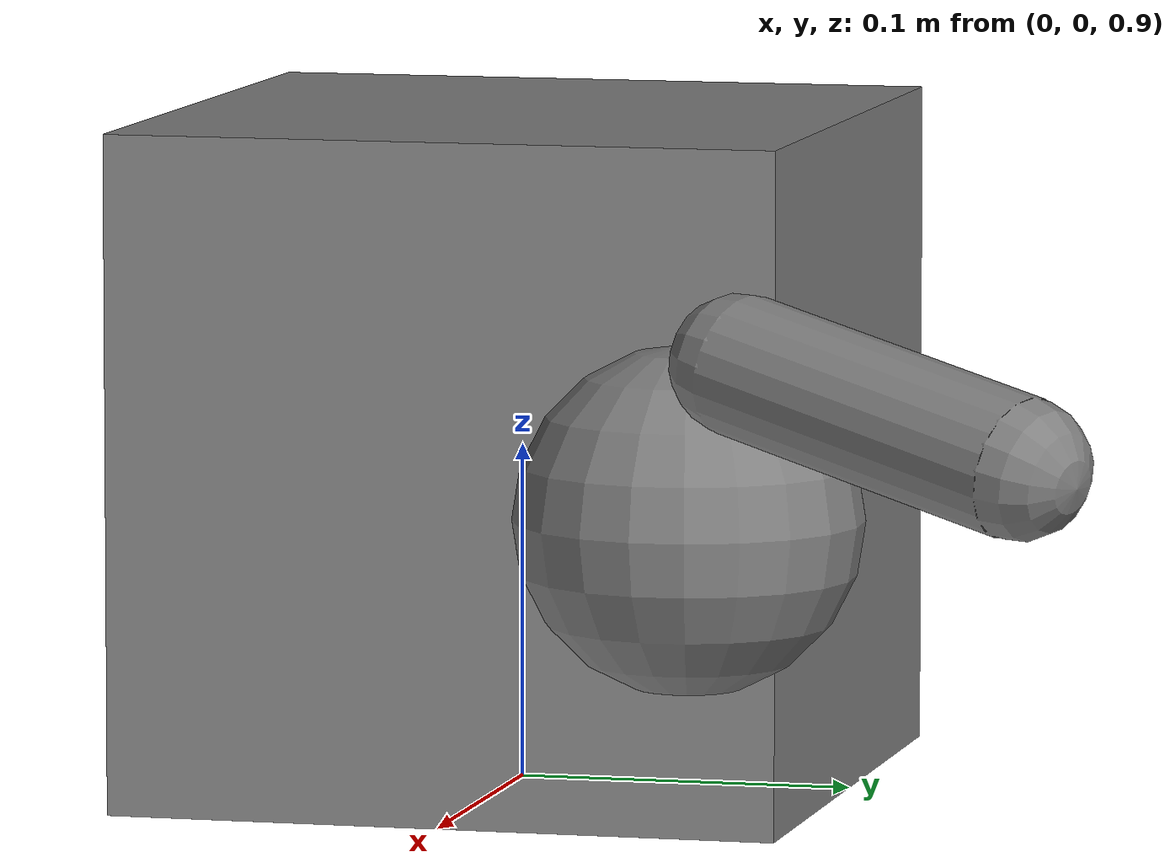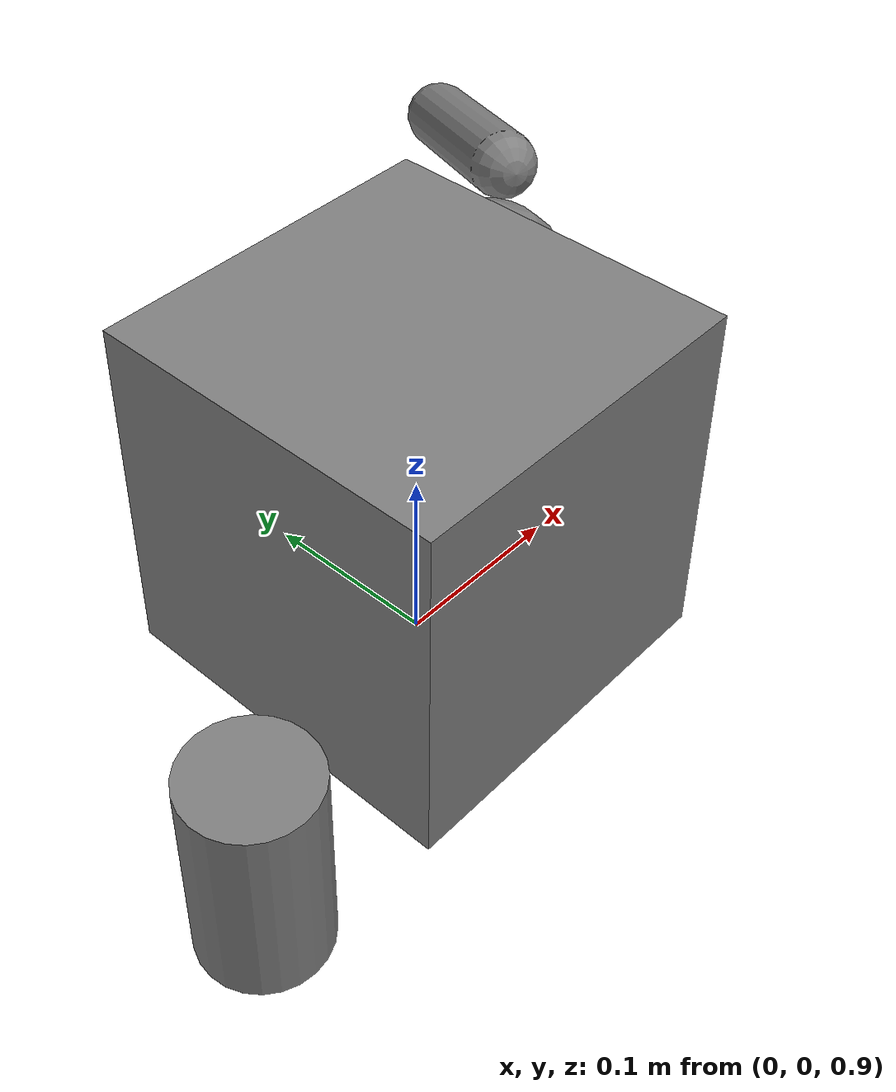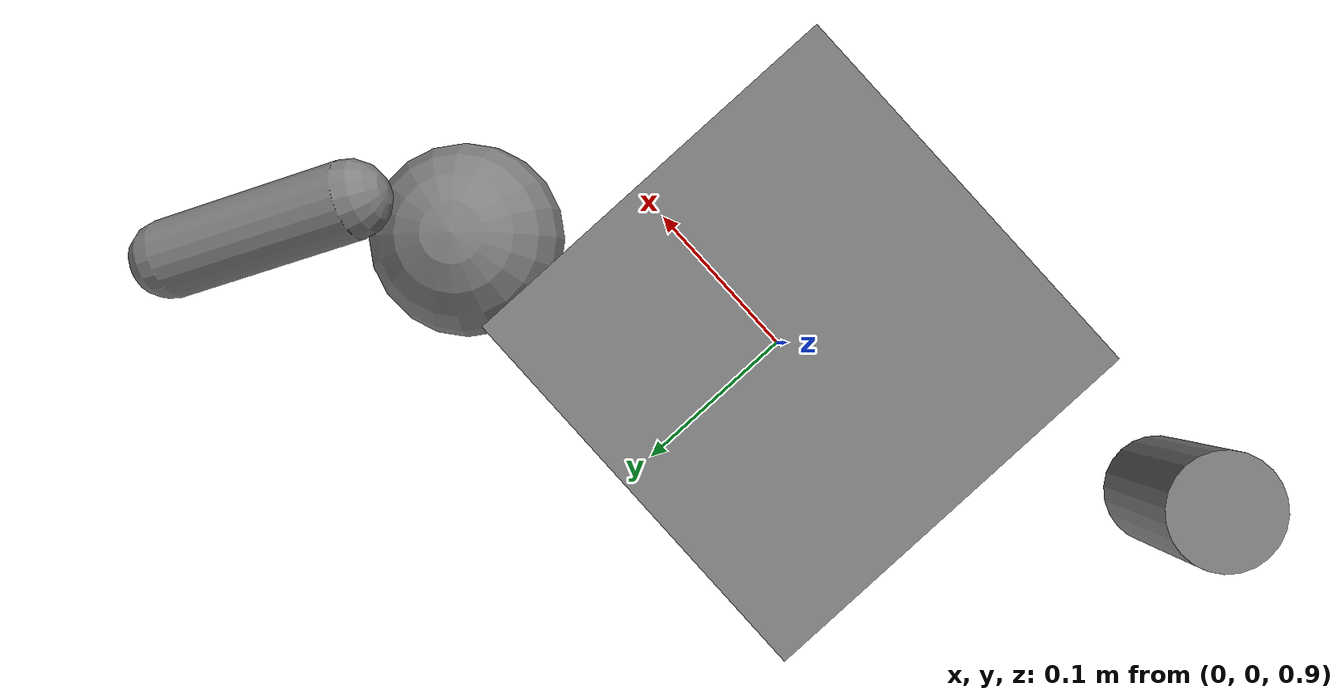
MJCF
<mujoco model="nested_bodies_frames">
  <compiler angle="degree"/>
  <worldbody>
    <body name="root" pos="0 0 1" quat="1 0 0 0">
      <inertial pos="0 0 0" mass="2" diaginertia="0.01 0.02 0.03"/>
      <geom name="root_g" type="box" size="0.1 0.1 0.1"/>
      <frame name="f1" pos="0.2 0 0" euler="0 0 30">
        <body name="child1" pos="0 0.1 0">
          <joint name="c1j" type="hinge" axis="0 1 0"/>
          <geom name="child1_g" type="sphere" size="0.05"/>
          <body name="grandchild" pos="0.05 0 0.05" euler="10 20 30">
            <joint name="gcj" type="slide" axis="1 0 0"/>
            <geom name="gc_g" type="capsule" size="0.02" fromto="0 0 0 0.1 0 0"/>
          </body>
        </body>
      </frame>
      <frame name="f2" pos="-0.2 0 0">
        <body name="child2" pos="0 -0.1 0">
          <geom name="child2_g" type="cylinder" size="0.03 0.05"/>
        </body>
      </frame>
    </body>
  </worldbody>
</mujoco>
